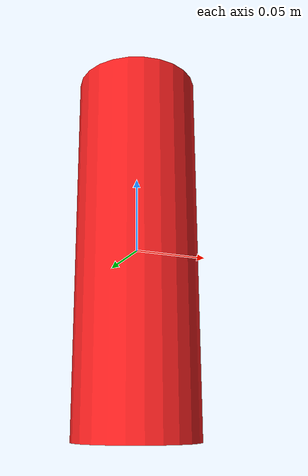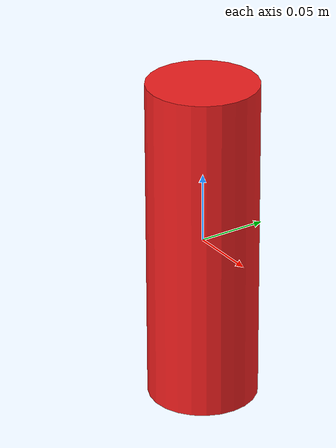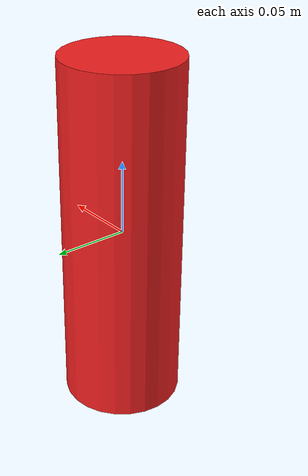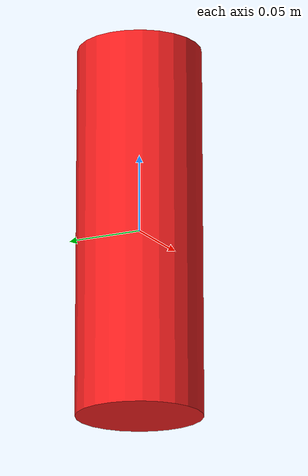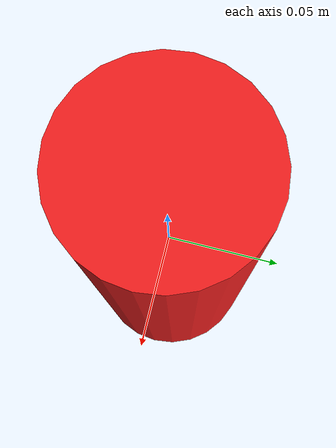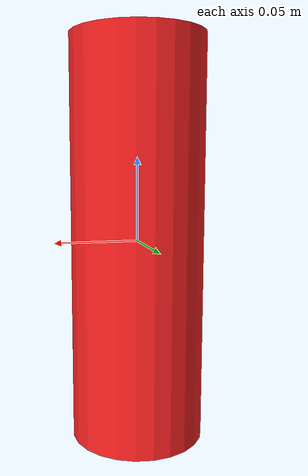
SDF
<?xml version="1.0"?>
<sdf version="1.9">
  <model name="trash_bottle_01"><static>true</static><link name="link">
    <visual name="visual"><geometry><cylinder><radius>0.04</radius><length>0.24</length></cylinder></geometry><material><ambient>0.90 0.12 0.12 1</ambient><diffuse>0.95 0.12 0.12 1</diffuse></material></visual>
    <collision name="collision"><geometry><cylinder><radius>0.04</radius><length>0.24</length></cylinder></geometry></collision>
  </link></model>
</sdf>
